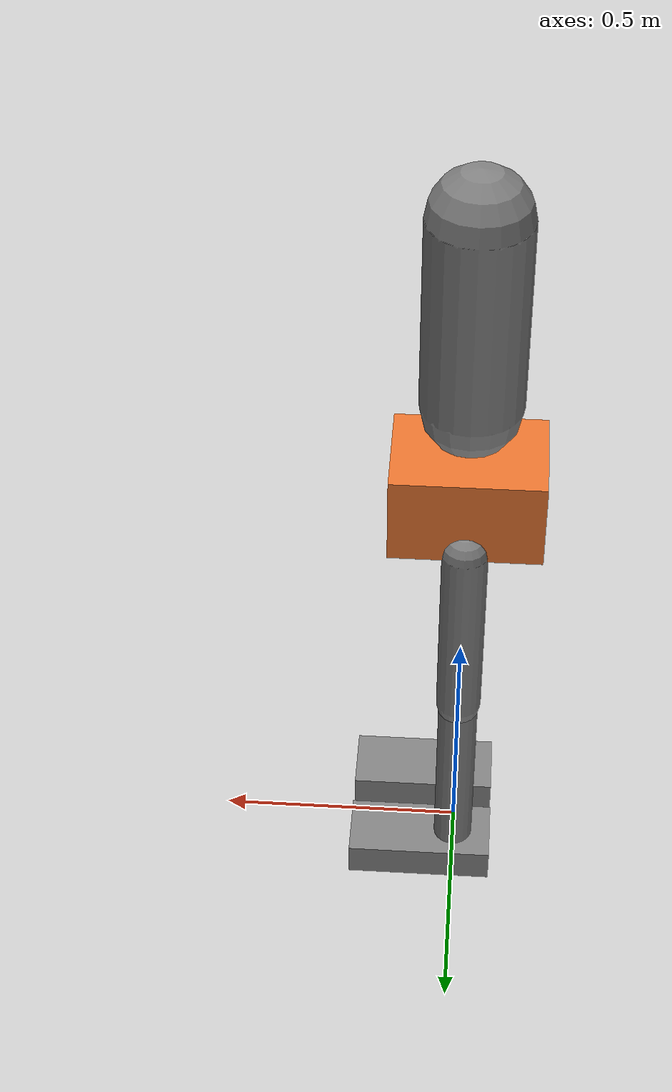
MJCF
<?xml version="1.0" encoding="UTF-8"?>
<mujoco model="sim2policy_sample_biped">
  <compiler angle="degree"/>
  <option gravity="0 0 -9.81" timestep="0.004"/>
  <default>
    <motor ctrllimited="true" ctrlrange="-1 1"/>
  </default>
  <worldbody>
    <body name="pelvis" pos="0 0 0.92">
      <freejoint name="root_free"/>
      <geom name="pelvis_geom" type="box" size="0.15 0.11 0.09" rgba="0.90 0.45 0.18 1"/>
      <body name="torso" pos="0 0 0.24">
        <joint name="spine" type="hinge" axis="0 1 0" range="-20 20"/>
        <geom name="torso_geom" type="capsule" size="0.10 0.20" pos="0 0 0.16"/>
      </body>
      <body name="left_thigh" pos="0 0.10 -0.08">
        <joint name="left_hip" type="hinge" axis="0 1 0" range="-75 45"/>
        <geom name="left_thigh_geom" type="capsule" size="0.045 0.20" pos="0 0 -0.20"/>
        <body name="left_shin" pos="0 0 -0.40">
          <joint name="left_knee" type="hinge" axis="0 1 0" range="-5 120"/>
          <geom name="left_shin_geom" type="capsule" size="0.04 0.20" pos="0 0 -0.20"/>
          <body name="left_foot" pos="0 0 -0.40">
            <joint name="left_ankle" type="hinge" axis="0 1 0" range="-35 35"/>
            <geom name="left_foot_geom" type="box" size="0.15 0.07 0.035" pos="0.07 0 -0.02"/>
          </body>
        </body>
      </body>
      <body name="right_thigh" pos="0 -0.10 -0.08">
        <joint name="right_hip" type="hinge" axis="0 1 0" range="-75 45"/>
        <geom name="right_thigh_geom" type="capsule" size="0.045 0.20" pos="0 0 -0.20"/>
        <body name="right_shin" pos="0 0 -0.40">
          <joint name="right_knee" type="hinge" axis="0 1 0" range="-5 120"/>
          <geom name="right_shin_geom" type="capsule" size="0.04 0.20" pos="0 0 -0.20"/>
          <body name="right_foot" pos="0 0 -0.40">
            <joint name="right_ankle" type="hinge" axis="0 1 0" range="-35 35"/>
            <geom name="right_foot_geom" type="box" size="0.15 0.07 0.035" pos="0.07 0 -0.02"/>
          </body>
        </body>
      </body>
    </body>
  </worldbody>
  <actuator>
    <motor name="spine_motor" joint="spine" gear="30"/>
    <motor name="left_hip_motor" joint="left_hip" gear="60"/>
    <motor name="left_knee_motor" joint="left_knee" gear="60"/>
    <motor name="left_ankle_motor" joint="left_ankle" gear="35"/>
    <motor name="right_hip_motor" joint="right_hip" gear="60"/>
    <motor name="right_knee_motor" joint="right_knee" gear="60"/>
    <motor name="right_ankle_motor" joint="right_ankle" gear="35"/>
  </actuator>
</mujoco>
